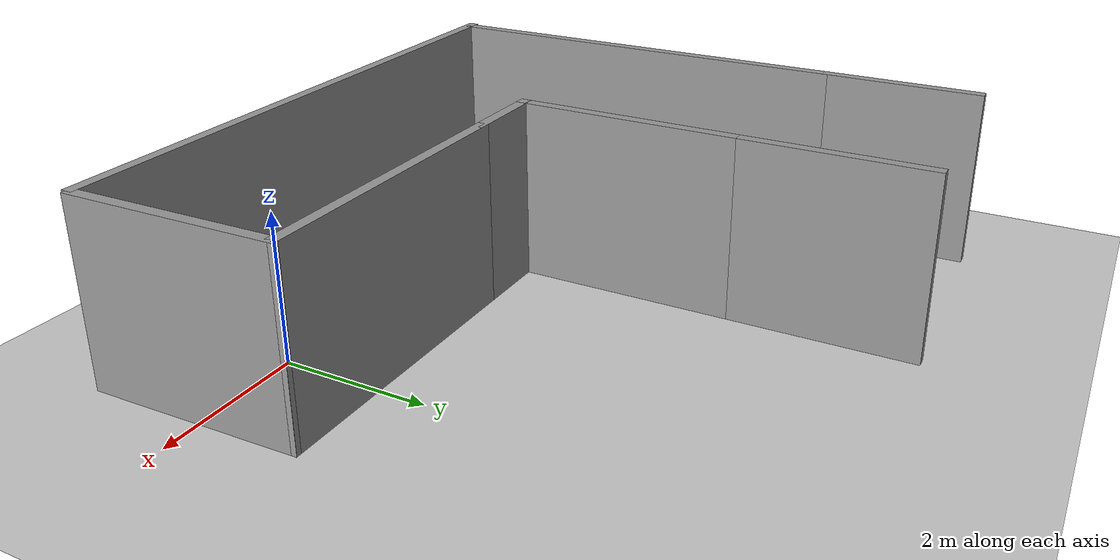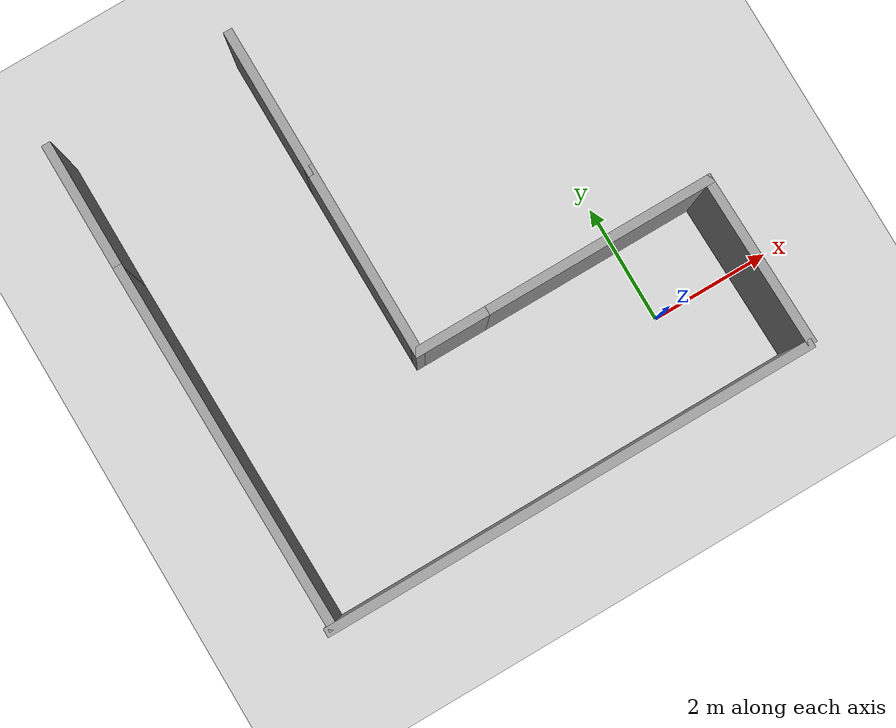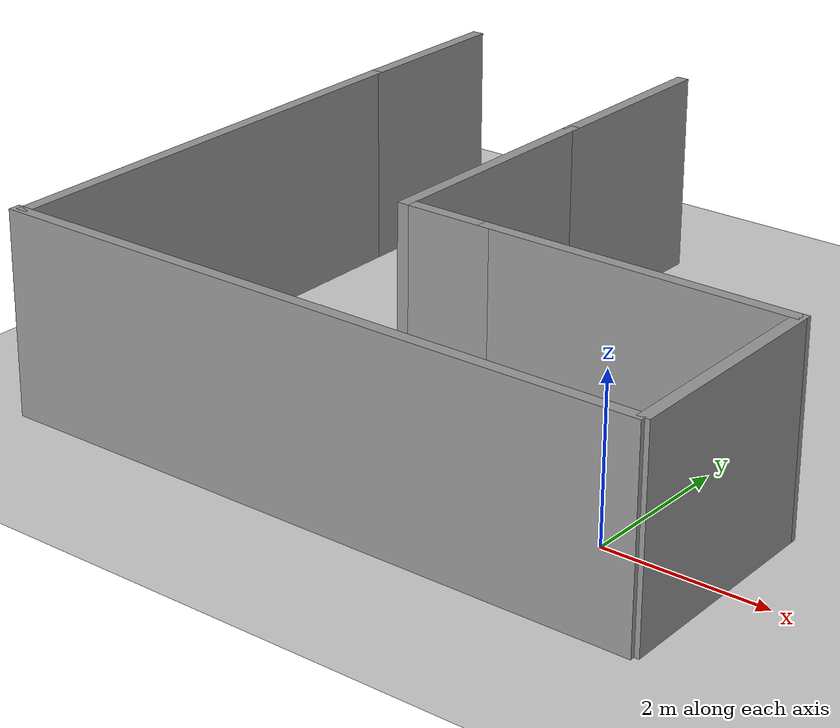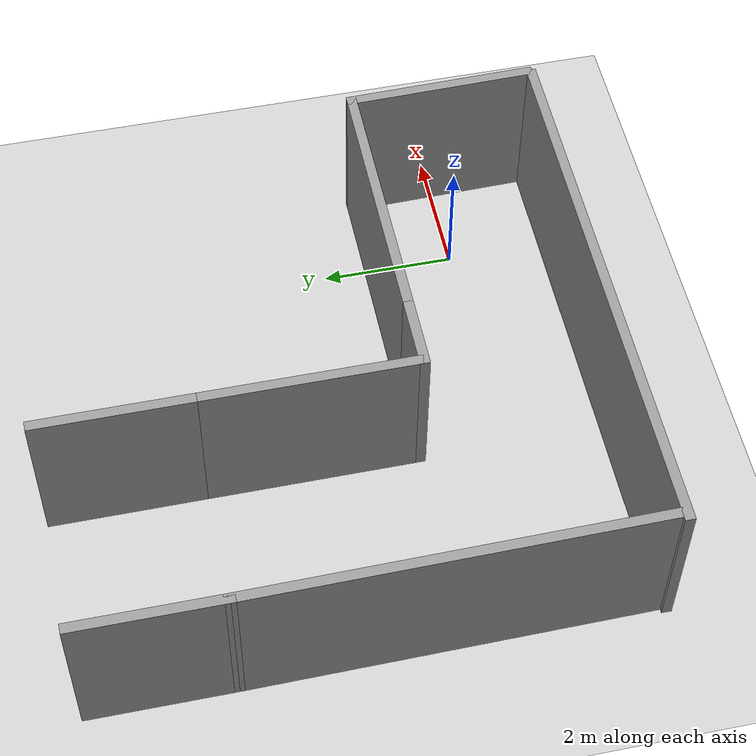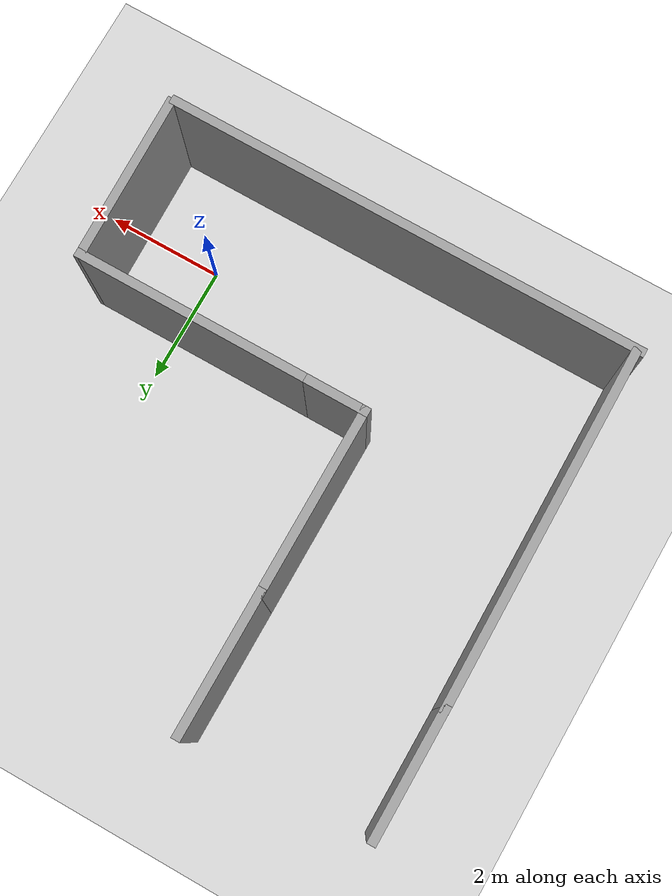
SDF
<sdf version="1.7">
 <world name="default">
  <light name="sun" type="directional">
   <pose>0 0 10 0 -0 0</pose>
   <diffuse>0.8 0.8 0.8 1</diffuse>
   <specular>0.2 0.2 0.2 1</specular>
   <attenuation>
    <range>1000</range>
    <constant>0.9</constant>
    <linear>0.01</linear>
    <quadratic>0.001</quadratic>
   </attenuation>
   <direction>-0.5 0.1 -0.9</direction>
   <spot><inner_angle>0</inner_angle><outer_angle>0</outer_angle><falloff>0</falloff></spot>
  </light>
  <model name="ground_plane">
   <static>1</static>
   <link name="link">
    <collision name="collision">
     <geometry><plane><normal>0 0 1</normal><size>100 100</size></plane></geometry>
     <surface>
      <contact><collide_bitmask>65535</collide_bitmask></contact>
      <friction><ode><mu>100</mu><mu2>50</mu2></ode></friction>
     </surface>
    </collision>
    <visual name="visual">
     <cast_shadows>0</cast_shadows>
     <geometry><plane><normal>0 0 1</normal><size>100 100</size></plane></geometry>
     <material>
      <script><uri>file://media/materials/scripts/gazebo.material</uri><name>Gazebo/Grey</name></script>
     </material>
    </visual>
   </link>
  </model>
  <gravity>0 0 -9.8</gravity>
  <magnetic_field>6e-06 2.3e-05 -4.2e-05</magnetic_field>
  <atmosphere type="adiabatic"/>
  <physics type="ode">
   <max_step_size>0.001</max_step_size>
   <real_time_factor>1</real_time_factor>
   <real_time_update_rate>1000</real_time_update_rate>
  </physics>
  <scene><ambient>0.4 0.4 0.4 1</ambient><background>0.7 0.7 0.7 1</background><shadows>1</shadows></scene>
  <audio><device>default</device></audio>
  <spherical_coordinates>
   <surface_model>EARTH_WGS84</surface_model>
   <latitude_deg>0</latitude_deg>
   <longitude_deg>0</longitude_deg>
   <elevation>0</elevation>
   <heading_deg>0</heading_deg>
  </spherical_coordinates>
  <model name="my_world.world">
   <pose>-2.64496 2.60396 0 0 -0 0</pose>
   <link name="Wall_10">
    <collision name="Wall_10_Collision">
     <geometry><box><size>6.17135 0.15 2.5</size></box></geometry>
     <pose>0 0 1.25 0 -0 0</pose>
    </collision>
    <visual name="Wall_10_Visual">
     <pose>0 0 1.25 0 -0 0</pose>
     <geometry><box><size>6.17135 0.15 2.5</size></box></geometry>
     <material>
      <script><uri>file://media/materials/scripts/gazebo.material</uri><name>Gazebo/Grey</name></script>
      <ambient>1 1 1 1</ambient>
     </material>
     <meta><layer>0</layer></meta>
    </visual>
    <pose>-4.05041 -1.0718 0 0 -0 -1.56143</pose>
   </link>
   <link name="Wall_11">
    <collision name="Wall_11_Collision">
     <geometry><box><size>8.25 0.15 2.5</size></box></geometry>
     <pose>0 0 1.25 0 -0 0</pose>
    </collision>
    <visual name="Wall_11_Visual">
     <pose>0 0 1.25 0 -0 0</pose>
     <geometry><box><size>8.25 0.15 2.5</size></box></geometry>
     <material>
      <script><uri>file://media/materials/scripts/gazebo.material</uri><name>Gazebo/Grey</name></script>
      <ambient>1 1 1 1</ambient>
     </material>
     <meta><layer>0</layer></meta>
    </visual>
    <pose>-0.028601 -4.13874 0 0 -0 0</pose>
   </link>
   <link name="Wall_12">
    <collision name="Wall_12_Collision">
     <geometry><box><size>2.92166 0.15 2.5</size></box></geometry>
     <pose>0 0 1.25 0 -0 0</pose>
    </collision>
    <visual name="Wall_12_Visual">
     <pose>0 0 1.25 0 -0 0</pose>
     <geometry><box><size>2.92166 0.15 2.5</size></box></geometry>
     <material>
      <script><uri>file://media/materials/scripts/gazebo.material</uri><name>Gazebo/Grey</name></script>
      <ambient>1 1 1 1</ambient>
     </material>
     <meta><layer>0</layer></meta>
    </visual>
    <pose>4.04959 -2.6968 0 0 -0 1.59114</pose>
   </link>
   <link name="Wall_13">
    <collision name="Wall_13_Collision">
     <geometry><box><size>4 0.15 2.5</size></box></geometry>
     <pose>0 0 1.25 0 -0 0</pose>
    </collision>
    <visual name="Wall_13_Visual">
     <pose>0 0 1.25 0 -0 0</pose>
     <geometry><box><size>4 0.15 2.5</size></box></geometry>
     <material>
      <script><uri>file://media/materials/scripts/gazebo.material</uri><name>Gazebo/Grey</name></script>
      <ambient>1 1 1 1</ambient>
     </material>
     <meta><layer>0</layer></meta>
    </visual>
    <pose>2.0964 -1.31126 0 0 -0 3.14159</pose>
   </link>
   <link name="Wall_15">
    <collision name="Wall_15_Collision">
     <geometry><box><size>1.25 0.15 2.5</size></box></geometry>
     <pose>0 0 1.25 0 -0 0</pose>
    </collision>
    <visual name="Wall_15_Visual">
     <pose>0 0 1.25 0 -0 0</pose>
     <geometry><box><size>1.25 0.15 2.5</size></box></geometry>
     <material>
      <script><uri>file://media/materials/scripts/gazebo.material</uri><name>Gazebo/Grey</name></script>
      <ambient>1 1 1 1</ambient>
     </material>
     <meta><layer>0</layer></meta>
    </visual>
    <pose>-0.378601 -1.31126 0 0 -0 3.14159</pose>
   </link>
   <link name="Wall_16">
    <collision name="Wall_16_Collision">
     <geometry><box><size>3.25 0.15 2.5</size></box></geometry>
     <pose>0 0 1.25 0 -0 0</pose>
    </collision>
    <visual name="Wall_16_Visual">
     <pose>0 0 1.25 0 -0 0</pose>
     <geometry><box><size>3.25 0.15 2.5</size></box></geometry>
     <material>
      <script><uri>file://media/materials/scripts/gazebo.material</uri><name>Gazebo/Grey</name></script>
      <ambient>1 1 1 1</ambient>
     </material>
     <meta><layer>0</layer></meta>
    </visual>
    <pose>-0.928601 0.238737 0 0 -0 1.5708</pose>
   </link>
   <link name="Wall_18">
    <collision name="Wall_18_Collision">
     <geometry><box><size>2.25 0.15 2.5</size></box></geometry>
     <pose>0 0 1.25 0 -0 0</pose>
    </collision>
    <visual name="Wall_18_Visual">
     <pose>0 0 1.25 0 -0 0</pose>
     <geometry><box><size>2.25 0.15 2.5</size></box></geometry>
     <material>
      <script><uri>file://media/materials/scripts/gazebo.material</uri><name>Gazebo/Grey</name></script>
      <ambient>1 1 1 1</ambient>
     </material>
     <meta><layer>0</layer></meta>
    </visual>
    <pose>-4.0786 2.98874 0 0 -0 1.5708</pose>
   </link>
   <link name="Wall_20">
    <collision name="Wall_20_Collision">
     <geometry><box><size>2.5 0.15 2.5</size></box></geometry>
     <pose>0 0 1.25 0 -0 0</pose>
    </collision>
    <visual name="Wall_20_Visual">
     <pose>0 0 1.25 0 -0 0</pose>
     <geometry><box><size>2.5 0.15 2.5</size></box></geometry>
     <material>
      <script><uri>file://media/materials/scripts/gazebo.material</uri><name>Gazebo/Grey</name></script>
      <ambient>1 1 1 1</ambient>
     </material>
     <meta><layer>0</layer></meta>
    </visual>
    <pose>-0.928601 2.96374 0 0 -0 1.5708</pose>
   </link>
   <static>1</static>
  </model>
 </world>
</sdf>
